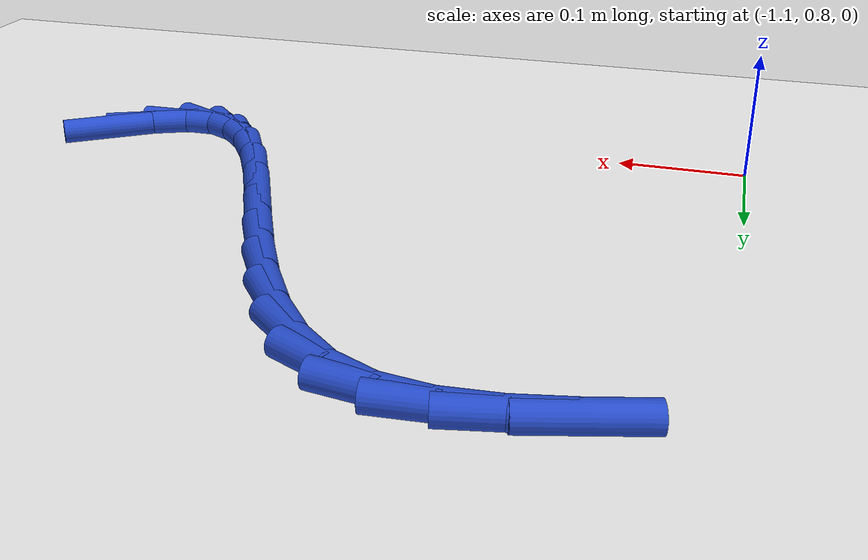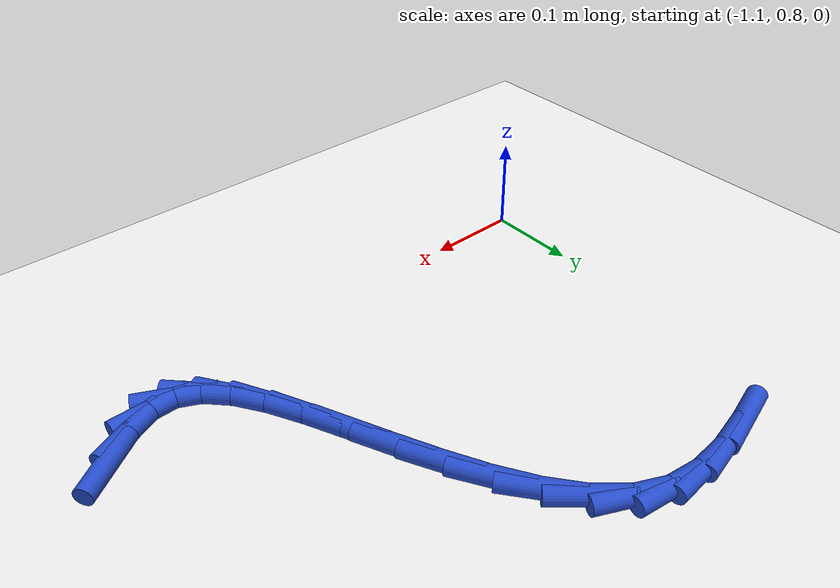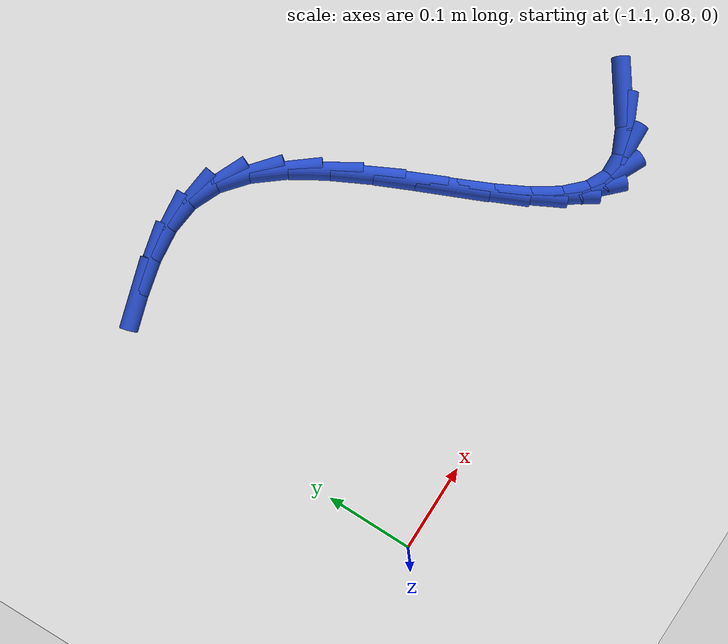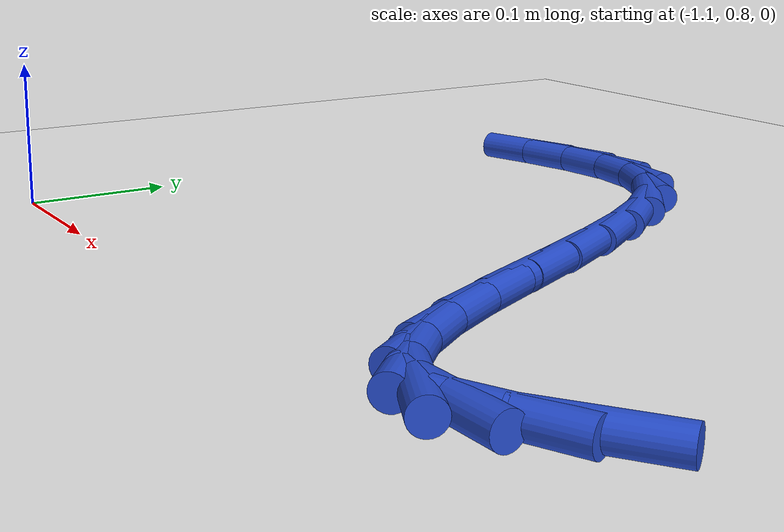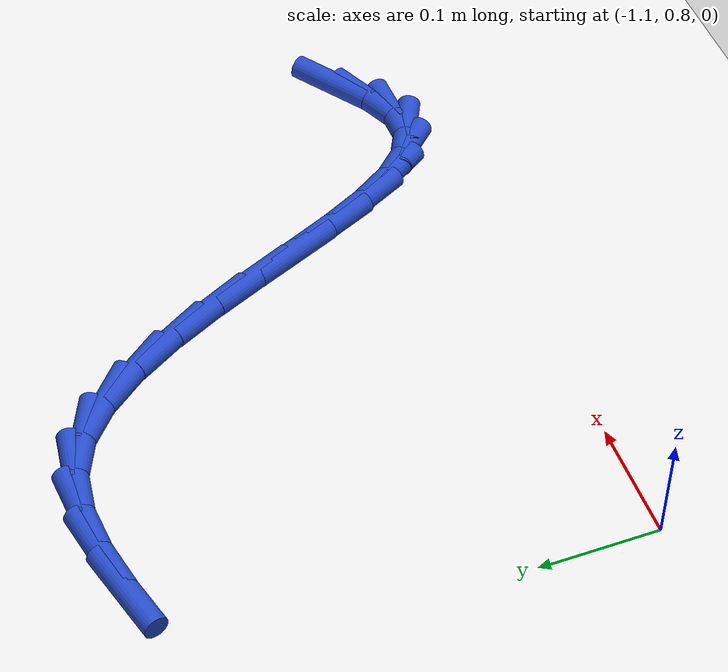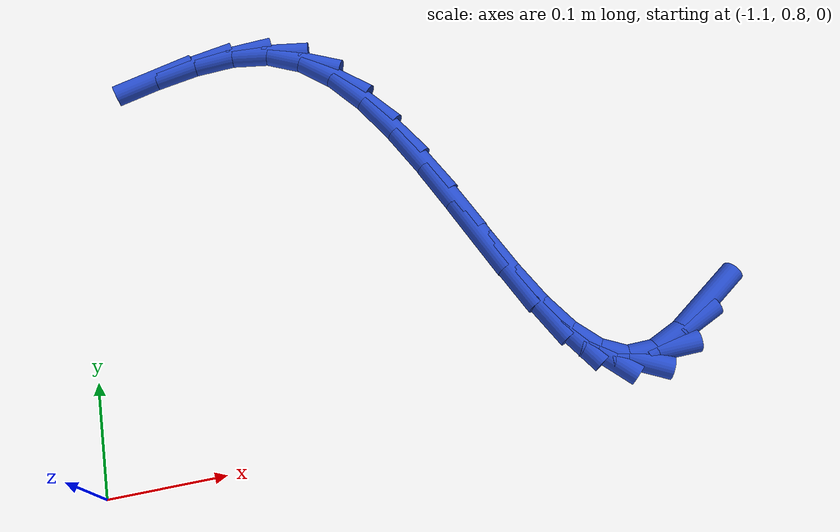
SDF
<sdf version="1.6">
 <world name="default">
  <model name="ground_plane">
   <static>1</static>
   <link name="link">
    <collision name="collision">
     <geometry><plane><normal>0 0 1</normal><size>100 100</size></plane></geometry>
     <surface><friction><ode><mu>100</mu><mu2>50</mu2></ode></friction></surface>
    </collision>
    <visual name="visual">
     <cast_shadows>0</cast_shadows>
     <geometry><plane><normal>0 0 1</normal><size>100 100</size></plane></geometry>
     <material>
      <script><uri>file://media/materials/scripts/gazebo.material</uri><name>Gazebo/WhiteGlow</name></script>
     </material>
    </visual>
   </link>
  </model>
  <model name="line">
   <link name="link_32">
    <pose>-0.5646596316467588 0.8646583298811094 0.01 0 1.57 0.6144774149631613</pose>
    <collision name="collision">
     <geometry><cylinder><radius>0.01</radius><length>0.08</length></cylinder></geometry>
    </collision>
    <visual name="visual">
     <material>
      <script><name>Gazebo/Blue</name><uri>file://media/materials/scripts/gazebo.material</uri></script>
     </material>
     <geometry><cylinder><radius>0.01</radius><length>0.08</length></cylinder></geometry>
    </visual>
   </link>
   <link name="link_33">
    <pose>-0.5945463416170143 0.8435701356781351 0.01 0 1.57 0.43124427876669924</pose>
    <collision name="collision">
     <geometry><cylinder><radius>0.01</radius><length>0.08</length></cylinder></geometry>
    </collision>
    <visual name="visual">
     <material>
      <script><name>Gazebo/Blue</name><uri>file://media/materials/scripts/gazebo.material</uri></script>
     </material>
     <geometry><cylinder><radius>0.01</radius><length>0.08</length></cylinder></geometry>
    </visual>
   </link>
   <link name="link_34">
    <pose>-0.622374578220841 0.8307655882738022 0.01 0 1.57 0.025799011337979936</pose>
    <collision name="collision">
     <geometry><cylinder><radius>0.01</radius><length>0.08</length></cylinder></geometry>
    </collision>
    <visual name="visual">
     <material>
      <script><name>Gazebo/Blue</name><uri>file://media/materials/scripts/gazebo.material</uri></script>
     </material>
     <geometry><cylinder><radius>0.01</radius><length>0.08</length></cylinder></geometry>
    </visual>
   </link>
   <link name="link_35">
    <pose>-0.6474519369915235 0.8301184736333873 0.01 0 1.57 -0.46246767152065776</pose>
    <collision name="collision">
     <geometry><cylinder><radius>0.01</radius><length>0.08</length></cylinder></geometry>
    </collision>
    <visual name="visual">
     <material>
      <script><name>Gazebo/Blue</name><uri>file://media/materials/scripts/gazebo.material</uri></script>
     </material>
     <geometry><cylinder><radius>0.01</radius><length>0.08</length></cylinder></geometry>
    </visual>
   </link>
   <link name="link_36">
    <pose>-0.6699811924695077 0.8413498920582518 0.01 0 1.57 -0.8008854762243441</pose>
    <collision name="collision">
     <geometry><cylinder><radius>0.01</radius><length>0.08</length></cylinder></geometry>
    </collision>
    <visual name="visual">
     <material>
      <script><name>Gazebo/Blue</name><uri>file://media/materials/scripts/gazebo.material</uri></script>
     </material>
     <geometry><cylinder><radius>0.01</radius><length>0.08</length></cylinder></geometry>
    </visual>
   </link>
   <link name="link_37">
    <pose>-0.690519952354935 0.8625348925420716 0.01 0 1.57 -0.9915245121324601</pose>
    <collision name="collision">
     <geometry><cylinder><radius>0.01</radius><length>0.08</length></cylinder></geometry>
    </collision>
    <visual name="visual">
     <material>
      <script><name>Gazebo/Blue</name><uri>file://media/materials/scripts/gazebo.material</uri></script>
     </material>
     <geometry><cylinder><radius>0.01</radius><length>0.08</length></cylinder></geometry>
    </visual>
   </link>
   <link name="link_38">
    <pose>-0.7096267136608638 0.8917443986053252 0.01 0 1.57 -1.0940749085628287</pose>
    <collision name="collision">
     <geometry><cylinder><radius>0.01</radius><length>0.08</length></cylinder></geometry>
    </collision>
    <visual name="visual">
     <material>
      <script><name>Gazebo/Blue</name><uri>file://media/materials/scripts/gazebo.material</uri></script>
     </material>
     <geometry><cylinder><radius>0.01</radius><length>0.08</length></cylinder></geometry>
    </visual>
   </link>
   <link name="link_39">
    <pose>-0.7278599734003521 0.9270493337684909 0.01 0 1.57 -1.1446568898654506</pose>
    <collision name="collision">
     <geometry><cylinder><radius>0.01</radius><length>0.08</length></cylinder></geometry>
    </collision>
    <visual name="visual">
     <material>
      <script><name>Gazebo/Blue</name><uri>file://media/materials/scripts/gazebo.material</uri></script>
     </material>
     <geometry><cylinder><radius>0.01</radius><length>0.08</length></cylinder></geometry>
    </visual>
   </link>
   <link name="link_40">
    <pose>-0.7457782285864589 0.9665206215520472 0.01 0 1.57 -1.1601128038462551</pose>
    <collision name="collision">
     <geometry><cylinder><radius>0.01</radius><length>0.08</length></cylinder></geometry>
    </collision>
    <visual name="visual">
     <material>
      <script><name>Gazebo/Blue</name><uri>file://media/materials/scripts/gazebo.material</uri></script>
     </material>
     <geometry><cylinder><radius>0.01</radius><length>0.08</length></cylinder></geometry>
    </visual>
   </link>
   <link name="link_41">
    <pose>-0.7639399762322421 1.0082291854764724 0.01 0 1.57 -1.1468307688760793</pose>
    <collision name="collision">
     <geometry><cylinder><radius>0.01</radius><length>0.08</length></cylinder></geometry>
    </collision>
    <visual name="visual">
     <material>
      <script><name>Gazebo/Blue</name><uri>file://media/materials/scripts/gazebo.material</uri></script>
     </material>
     <geometry><cylinder><radius>0.01</radius><length>0.08</length></cylinder></geometry>
    </visual>
   </link>
   <link name="link_42">
    <pose>-0.7829037133507601 1.0502459490622456 0.01 0 1.57 -1.1046509931713098</pose>
    <collision name="collision">
     <geometry><cylinder><radius>0.01</radius><length>0.08</length></cylinder></geometry>
    </collision>
    <visual name="visual">
     <material>
      <script><name>Gazebo/Blue</name><uri>file://media/materials/scripts/gazebo.material</uri></script>
     </material>
     <geometry><cylinder><radius>0.01</radius><length>0.08</length></cylinder></geometry>
    </visual>
   </link>
   <link name="link_43">
    <pose>-0.8032279369550712 1.0906418358298449 0.01 0 1.57 -1.027674262859565</pose>
    <collision name="collision">
     <geometry><cylinder><radius>0.01</radius><length>0.08</length></cylinder></geometry>
    </collision>
    <visual name="visual">
     <material>
      <script><name>Gazebo/Blue</name><uri>file://media/materials/scripts/gazebo.material</uri></script>
     </material>
     <geometry><cylinder><radius>0.01</radius><length>0.08</length></cylinder></geometry>
    </visual>
   </link>
   <link name="link_44">
    <pose>-0.8254711440582341 1.1274877692997483 0.01 0 1.57 -0.9033452468517789</pose>
    <collision name="collision">
     <geometry><cylinder><radius>0.01</radius><length>0.08</length></cylinder></geometry>
    </collision>
    <visual name="visual">
     <material>
      <script><name>Gazebo/Blue</name><uri>file://media/materials/scripts/gazebo.material</uri></script>
     </material>
     <geometry><cylinder><radius>0.01</radius><length>0.08</length></cylinder></geometry>
    </visual>
   </link>
   <link name="link_45">
    <pose>-0.8501918316733068 1.158854672992435 0.01 0 1.57 -0.7120919974918782</pose>
    <collision name="collision">
     <geometry><cylinder><radius>0.01</radius><length>0.08</length></cylinder></geometry>
    </collision>
    <visual name="visual">
     <material>
      <script><name>Gazebo/Blue</name><uri>file://media/materials/scripts/gazebo.material</uri></script>
     </material>
     <geometry><cylinder><radius>0.01</radius><length>0.08</length></cylinder></geometry>
    </visual>
   </link>
   <link name="link_46">
    <pose>-0.877948496813348 1.1828134704283835 0.01 0 1.57 -0.43663035116877313</pose>
    <collision name="collision">
     <geometry><cylinder><radius>0.01</radius><length>0.08</length></cylinder></geometry>
    </collision>
    <visual name="visual">
     <material>
      <script><name>Gazebo/Blue</name><uri>file://media/materials/scripts/gazebo.material</uri></script>
     </material>
     <geometry><cylinder><radius>0.01</radius><length>0.08</length></cylinder></geometry>
    </visual>
   </link>
   <link name="link_47">
    <pose>-0.9092969047435241 1.1974428492938922 0.01 0 1.57 -0.13273279161382598</pose>
    <collision name="collision">
     <geometry><cylinder><radius>0.01</radius><length>0.08</length></cylinder></geometry>
    </collision>
    <visual name="visual">
     <material>
      <script><name>Gazebo/Blue</name><uri>file://media/materials/scripts/gazebo.material</uri></script>
     </material>
     <geometry><cylinder><radius>0.01</radius><length>0.08</length></cylinder></geometry>
    </visual>
   </link>
   <link name="link_48">
    <pose>-0.9443355560453697 1.2021211336139008 0.01 0 1.57 0.08297728606541009</pose>
    <collision name="collision">
     <geometry><cylinder><radius>0.01</radius><length>0.08</length></cylinder></geometry>
    </collision>
    <visual name="visual">
     <material>
      <script><name>Gazebo/Blue</name><uri>file://media/materials/scripts/gazebo.material</uri></script>
     </material>
     <geometry><cylinder><radius>0.01</radius><length>0.08</length></cylinder></geometry>
    </visual>
   </link>
   <link name="link_49">
    <pose>-0.982196930347747 1.1989722693231921 0.01 0 1.57 0.21103295944063138</pose>
    <collision name="collision">
     <geometry><cylinder><radius>0.01</radius><length>0.08</length></cylinder></geometry>
    </collision>
    <visual name="visual">
     <material>
      <script><name>Gazebo/Blue</name><uri>file://media/materials/scripts/gazebo.material</uri></script>
     </material>
     <geometry><cylinder><radius>0.01</radius><length>0.08</length></cylinder></geometry>
    </visual>
   </link>
   <link name="link_50">
    <pose>-1.0218908053405618 1.1904689454464856 0.01 0 1.57 0.27380852703204606</pose>
    <collision name="collision">
     <geometry><cylinder><radius>0.01</radius><length>0.08</length></cylinder></geometry>
    </collision>
    <visual name="visual">
     <material>
      <script><name>Gazebo/Blue</name><uri>file://media/materials/scripts/gazebo.material</uri></script>
     </material>
     <geometry><cylinder><radius>0.01</radius><length>0.08</length></cylinder></geometry>
    </visual>
   </link>
  </model>
 </world>
</sdf>
